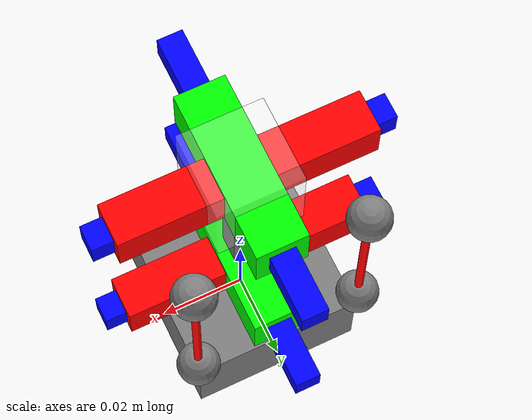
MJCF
<mujoco>

<default>
    <geom density="1000"/>
</default>

<compiler angle="radian" meshdir="." autolimits="true"/>

  <!-- import our stl files -->
  <asset>
  </asset>

  <worldbody>
    <!-- set up a light pointing down on the robot -->
    <light directional="true" pos="-0.5 0.5 3" dir="0 0 -1" />
    <!-- add a floor so we don't stare off into the abyss -->
    <geom name="floor" pos="0 0 -1" size="1 1 1" type="plane" rgba="1 0.83 0.61 0.5"/>
    <!-- Define the base -->
    <body name="base" pos="0 0 0">
        <geom name="base" type="box" size=".02 .02 .01"  rgba=".5 .5 .5 1"  contype="0" conaffinity="0"/>

        <!-- Define the shoulder -->
        <body name="neckbase" pos="0 0 .04">
            <!-- no collision: contype="0" conaffinity="0" -->
            <geom name="baseframex" type="box" size=".003" fromto="-.035 0 -.022 .035 0 -.022"  rgba="0 0 1 1"  contype="0" conaffinity="0"/>
            <geom name="baseframey" type="box" size=".003" fromto="0 -.035 -.022 0 .035 -.022"  rgba="0 0 1 1"  contype="0" conaffinity="0"/>
            <!-- Define site for tendon_x_end within base2 body -->
            <site name="tendon_x_start" pos="0.02 .02 -.022"/>
            <site name="tendon_y_start" pos="-0.02 0.02 -.022"/>
            <body name="xjoint1" pos="0 0 0" >
                <geom name="xjoint1" type="box" size=".005" fromto="-.03 0 -.022 .03 0 -.022"  rgba="1 0 0 1"  contype="0" conaffinity="0"/>
                <joint name="xjoint1" type="hinge" axis="1 0 0" damping="0.05" pos="0 0 -.022" range="-0.7854 0.7854" />

                <body name="yjoint1" pos="0 0 0">
                    <geom name="connector" type="box" size=".003" fromto="0 0  -.022 0 0 .022"  rgba=".5 .5 .5 1"  contype="0" conaffinity="0"/>
                    <geom name="yjoint1" type="box" size=".006" fromto="0 0.02  -.022 0 -0.02 -.022"  rgba="0 1 0 1"  contype="0" conaffinity="0"/>
                    <joint name="yjoint1" type="hinge" axis="0 1 0" damping="0.05" pos="0 0 -.022" range="-0.7854 0.7854"/>
                    <geom name="yjoint2" type="box" size=".006" fromto="0 0.02  .022 0 -0.02 .022"  rgba="0 1 0 1"  contype="0" conaffinity="0"/>

                    <body name="yjoint2" pos="0 0 0">
                        <joint name="yjoint2" type="hinge" axis="0 1 0" damping="0.05" pos="0 0 .022"/>
                        <geom name="xjoint2" type="box" size=".005" fromto="-.03 0 .022 .03 0 .022"  rgba="1 0 0 1"  contype="0" conaffinity="0" />
                        <body name="base2" pos="0 0 .022">
                            <geom name="base2" type="box" size=".01 .01 .01" rgba="1 1 1 .3" contype="0" conaffinity="0" mass="0"/>
                            <joint name="xjoint2" type="hinge" axis="1 0 0" damping="0.05" pos="0 0 0"/>
                            <!-- no collision: contype="0" conaffinity="0" -->
                            <geom name="endframex" type="box" size=".003" fromto="-.035 0 0 .035 0 0"  rgba="0 0 1 1"  contype="0" conaffinity="0"/>
                            <geom name="endframey" type="box" size=".003" fromto="0 -.035 0 0 .035 0"  rgba="0 0 1 1"  contype="0" conaffinity="0"/>
                            <!-- Define site for tendon_x_end within base2 body -->
                            <site name="tendon_x_end" pos="0.02 .02 0"/>
                            <site name="tendon_y_end" pos="-.02 .02 0"/>
                        </body>
                    </body>
                </body>
            </body>
        </body>
    </body>

  </worldbody>

  <!-- add constrains to make joint axis move together -->
  <equality>
    <joint joint1="xjoint1" joint2="xjoint2" polycoef="0 1 0 0 0" solref="0.002 1" solimp="0.8 0.8 0.01"/>
    <joint joint1="yjoint1" joint2="yjoint2" polycoef="0 1 0 0 0" solref="0.002 1" solimp="0.8 0.8 0.01"/>
    <!-- https://mujoco.readthedocs.io/en/latest/modeling.html -->
  </equality>

<!-- Define Tendons for Cable Actuation -->
<tendon>
    <spatial name="tendon_x" width="0.001" rgba="1 0 0 1">
        <site site="tendon_x_start"/>
        <site site="tendon_x_end"/>
    </spatial>
    <spatial name="tendon_y" width="0.001" rgba="1 0 0 1">
        <site site="tendon_y_start"/>
        <site site="tendon_y_end"/>
    </spatial>
</tendon>

<actuator>
</actuator>

</mujoco>
